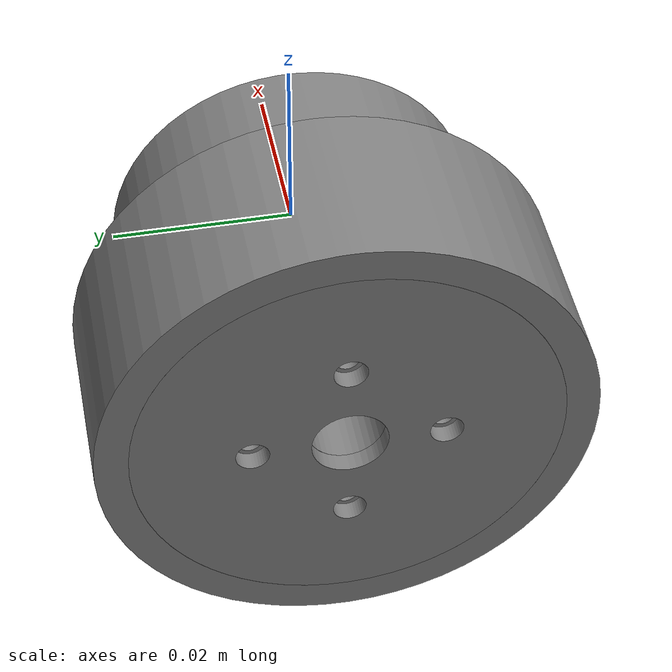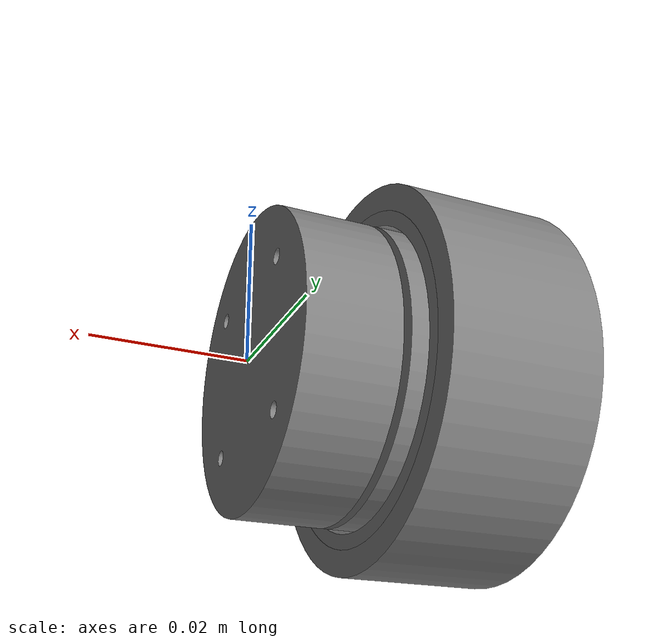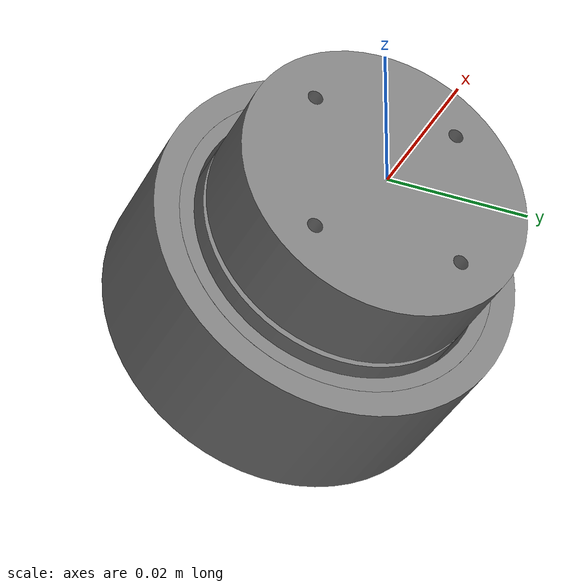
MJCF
<?xml version="1.0" encoding="UTF-8"?>
<mujoco>
<compiler meshdir="assets"/>
  <asset>
    <mesh file="di_pan_xiao_che____right_back_drive_3__bao_jiao_lun__1__bao_jiao_lun_pi__1.stl"/>
    <mesh file="di_pan_xiao_che____right_back_drive_3__bao_jiao_lun__1__bao_jiao_lun_xin__1.stl"/>
    <mesh file="di_pan_xiao_che____right_back_drive_3__dian_ji__1.stl"/>
  </asset>

  <default>
  <default class="right_back_drive_default">
  <geom contype="0" conaffinity="0"/>
  </default>
  </default>

  <worldbody>
  <body name="right_back_drive_body" pos="0 0 0">
    <geom type="mesh" mesh="di_pan_xiao_che____right_back_drive_3__bao_jiao_lun__1__bao_jiao_lun_pi__1" class="right_back_drive_default"/>
    <geom type="mesh" mesh="di_pan_xiao_che____right_back_drive_3__bao_jiao_lun__1__bao_jiao_lun_xin__1" class="right_back_drive_default"/>
    <geom type="mesh" mesh="di_pan_xiao_che____right_back_drive_3__dian_ji__1" class="right_back_drive_default"/>
  </body>
  </worldbody>
</mujoco>
